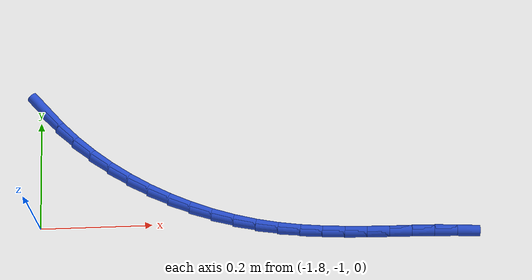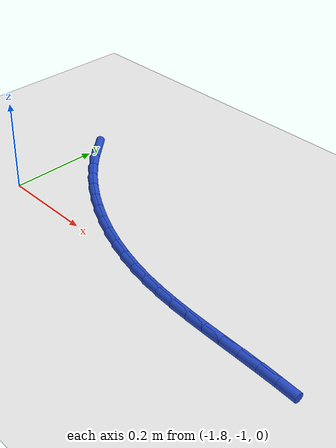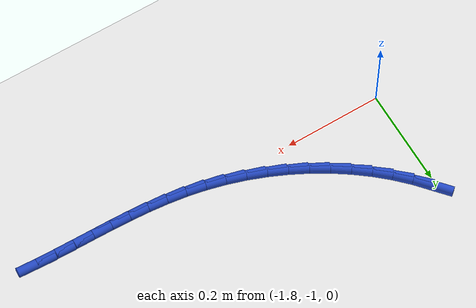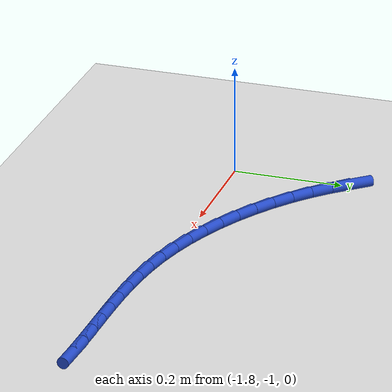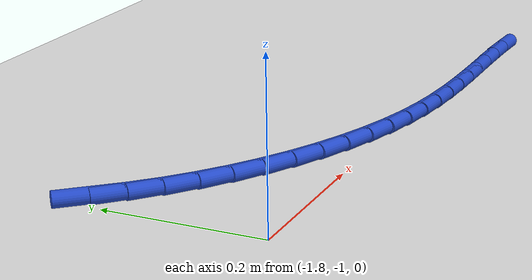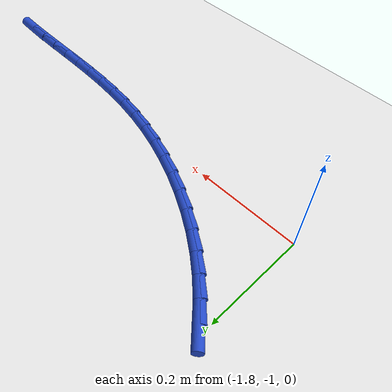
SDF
<sdf version="1.6">
 <world name="default">
  <model name="ground_plane">
   <static>1</static>
   <link name="link">
    <collision name="collision">
     <geometry><plane><normal>0 0 1</normal><size>100 100</size></plane></geometry>
     <surface><friction><ode><mu>100</mu><mu2>50</mu2></ode></friction></surface>
    </collision>
    <visual name="visual">
     <cast_shadows>0</cast_shadows>
     <geometry><plane><normal>0 0 1</normal><size>100 100</size></plane></geometry>
     <material>
      <script><uri>file://media/materials/scripts/gazebo.material</uri><name>Gazebo/WhiteGlow</name></script>
     </material>
    </visual>
   </link>
  </model>
  <model name="line">
   <link name="link_108">
    <pose>-1.7912358187126936 -0.7799127115967691 0.01 0 1.57 -0.8622204265804458</pose>
    <collision name="collision">
     <geometry><cylinder><radius>0.01</radius><length>0.08</length></cylinder></geometry>
    </collision>
    <visual name="visual">
     <material>
      <script><name>Gazebo/Blue</name><uri>file://media/materials/scripts/gazebo.material</uri></script>
     </material>
     <geometry><cylinder><radius>0.01</radius><length>0.08</length></cylinder></geometry>
    </visual>
   </link>
   <link name="link_109">
    <pose>-1.765108441517183 -0.8103977592660492 0.01 0 1.57 -0.793019555378858</pose>
    <collision name="collision">
     <geometry><cylinder><radius>0.01</radius><length>0.08</length></cylinder></geometry>
    </collision>
    <visual name="visual">
     <material>
      <script><name>Gazebo/Blue</name><uri>file://media/materials/scripts/gazebo.material</uri></script>
     </material>
     <geometry><cylinder><radius>0.01</radius><length>0.08</length></cylinder></geometry>
    </visual>
   </link>
   <link name="link_110">
    <pose>-1.7367904774284568 -0.8391506914478122 0.01 0 1.57 -0.7248459104672693</pose>
    <collision name="collision">
     <geometry><cylinder><radius>0.01</radius><length>0.08</length></cylinder></geometry>
    </collision>
    <visual name="visual">
     <material>
      <script><name>Gazebo/Blue</name><uri>file://media/materials/scripts/gazebo.material</uri></script>
     </material>
     <geometry><cylinder><radius>0.01</radius><length>0.08</length></cylinder></geometry>
    </visual>
   </link>
   <link name="link_111">
    <pose>-1.7064028698980664 -0.8660643323955335 0.01 0 1.57 -0.6598375135440552</pose>
    <collision name="collision">
     <geometry><cylinder><radius>0.01</radius><length>0.08</length></cylinder></geometry>
    </collision>
    <visual name="visual">
     <material>
      <script><name>Gazebo/Blue</name><uri>file://media/materials/scripts/gazebo.material</uri></script>
     </material>
     <geometry><cylinder><radius>0.01</radius><length>0.08</length></cylinder></geometry>
    </visual>
   </link>
   <link name="link_112">
    <pose>-1.674163656669805 -0.8910769514778608 0.01 0 1.57 -0.5975071621251413</pose>
    <collision name="collision">
     <geometry><cylinder><radius>0.01</radius><length>0.08</length></cylinder></geometry>
    </collision>
    <visual name="visual">
     <material>
      <script><name>Gazebo/Blue</name><uri>file://media/materials/scripts/gazebo.material</uri></script>
     </material>
     <geometry><cylinder><radius>0.01</radius><length>0.08</length></cylinder></geometry>
    </visual>
   </link>
   <link name="link_113">
    <pose>-1.6402908754874654 -0.9141268180634404 0.01 0 1.57 -0.5373382476856642</pose>
    <collision name="collision">
     <geometry><cylinder><radius>0.01</radius><length>0.08</length></cylinder></geometry>
    </collision>
    <visual name="visual">
     <material>
      <script><name>Gazebo/Blue</name><uri>file://media/materials/scripts/gazebo.material</uri></script>
     </material>
     <geometry><cylinder><radius>0.01</radius><length>0.08</length></cylinder></geometry>
    </visual>
   </link>
   <link name="link_114">
    <pose>-1.6050025640948429 -0.93515220152092 0.01 0 1.57 -0.4787973992429314</pose>
    <collision name="collision">
     <geometry><cylinder><radius>0.01</radius><length>0.08</length></cylinder></geometry>
    </collision>
    <visual name="visual">
     <material>
      <script><name>Gazebo/Blue</name><uri>file://media/materials/scripts/gazebo.material</uri></script>
     </material>
     <geometry><cylinder><radius>0.01</radius><length>0.08</length></cylinder></geometry>
    </visual>
   </link>
   <link name="link_115">
    <pose>-1.5685167602357293 -0.9540913712189466 0.01 0 1.57 -0.42134039837001847</pose>
    <collision name="collision">
     <geometry><cylinder><radius>0.01</radius><length>0.08</length></cylinder></geometry>
    </collision>
    <visual name="visual">
     <material>
      <script><name>Gazebo/Blue</name><uri>file://media/materials/scripts/gazebo.material</uri></script>
     </material>
     <geometry><cylinder><radius>0.01</radius><length>0.08</length></cylinder></geometry>
    </visual>
   </link>
   <link name="link_116">
    <pose>-1.53105150165392 -0.9708825965261663 0.01 0 1.57 -0.36441309400160177</pose>
    <collision name="collision">
     <geometry><cylinder><radius>0.01</radius><length>0.08</length></cylinder></geometry>
    </collision>
    <visual name="visual">
     <material>
      <script><name>Gazebo/Blue</name><uri>file://media/materials/scripts/gazebo.material</uri></script>
     </material>
     <geometry><cylinder><radius>0.01</radius><length>0.08</length></cylinder></geometry>
    </visual>
   </link>
   <link name="link_117">
    <pose>-1.4928248260932078 -0.9854641468112263 0.01 0 1.57 -0.3074488046332142</pose>
    <collision name="collision">
     <geometry><cylinder><radius>0.01</radius><length>0.08</length></cylinder></geometry>
    </collision>
    <visual name="visual">
     <material>
      <script><name>Gazebo/Blue</name><uri>file://media/materials/scripts/gazebo.material</uri></script>
     </material>
     <geometry><cylinder><radius>0.01</radius><length>0.08</length></cylinder></geometry>
    </visual>
   </link>
   <link name="link_118">
    <pose>-1.4540547712973877 -0.9977742914427742 0.01 0 1.57 -0.24986347622223026</pose>
    <collision name="collision">
     <geometry><cylinder><radius>0.01</radius><length>0.08</length></cylinder></geometry>
    </collision>
    <visual name="visual">
     <material>
      <script><name>Gazebo/Blue</name><uri>file://media/materials/scripts/gazebo.material</uri></script>
     </material>
     <geometry><cylinder><radius>0.01</radius><length>0.08</length></cylinder></geometry>
    </visual>
   </link>
   <link name="link_119">
    <pose>-1.414959375010253 -1.0077512997894567 0.01 0 1.57 -0.19169475672861824</pose>
    <collision name="collision">
     <geometry><cylinder><radius>0.01</radius><length>0.08</length></cylinder></geometry>
    </collision>
    <visual name="visual">
     <material>
      <script><name>Gazebo/Blue</name><uri>file://media/materials/scripts/gazebo.material</uri></script>
     </material>
     <geometry><cylinder><radius>0.01</radius><length>0.08</length></cylinder></geometry>
    </visual>
   </link>
   <link name="link_120">
    <pose>-1.3757399857437154 -1.01536291464635 0.01 0 1.57 -0.1386567992293267</pose>
    <collision name="collision">
     <geometry><cylinder><radius>0.01</radius><length>0.08</length></cylinder></geometry>
    </collision>
    <visual name="visual">
     <material>
      <script><name>Gazebo/Blue</name><uri>file://media/materials/scripts/gazebo.material</uri></script>
     </material>
     <geometry><cylinder><radius>0.01</radius><length>0.08</length></cylinder></geometry>
    </visual>
   </link>
   <link name="link_121">
    <pose>-1.3364452304762546 -1.0208465872595862 0.01 0 1.57 -0.09457794349253376</pose>
    <collision name="collision">
     <geometry><cylinder><radius>0.01</radius><length>0.08</length></cylinder></geometry>
    </collision>
    <visual name="visual">
     <material>
      <script><name>Gazebo/Blue</name><uri>file://media/materials/scripts/gazebo.material</uri></script>
     </material>
     <geometry><cylinder><radius>0.01</radius><length>0.08</length></cylinder></geometry>
    </visual>
   </link>
   <link name="link_122">
    <pose>-1.2970418209689685 -1.0245844323415487 0.01 0 1.57 -0.05999729185227151</pose>
    <collision name="collision">
     <geometry><cylinder><radius>0.01</radius><length>0.08</length></cylinder></geometry>
    </collision>
    <visual name="visual">
     <material>
      <script><name>Gazebo/Blue</name><uri>file://media/materials/scripts/gazebo.material</uri></script>
     </material>
     <geometry><cylinder><radius>0.01</radius><length>0.08</length></cylinder></geometry>
    </visual>
   </link>
   <link name="link_123">
    <pose>-1.2574956877466075 -1.0269599442793798 0.01 0 1.57 -0.03514590153951568</pose>
    <collision name="collision">
     <geometry><cylinder><radius>0.01</radius><length>0.08</length></cylinder></geometry>
    </collision>
    <visual name="visual">
     <material>
      <script><name>Gazebo/Blue</name><uri>file://media/materials/scripts/gazebo.material</uri></script>
     </material>
     <geometry><cylinder><radius>0.01</radius><length>0.08</length></cylinder></geometry>
    </visual>
   </link>
   <link name="link_124">
    <pose>-1.217772761333924 -1.0283566174602208 0.01 0 1.57 -0.020063743026114515</pose>
    <collision name="collision">
     <geometry><cylinder><radius>0.01</radius><length>0.08</length></cylinder></geometry>
    </collision>
    <visual name="visual">
     <material>
      <script><name>Gazebo/Blue</name><uri>file://media/materials/scripts/gazebo.material</uri></script>
     </material>
     <geometry><cylinder><radius>0.01</radius><length>0.08</length></cylinder></geometry>
    </visual>
   </link>
   <link name="link_125">
    <pose>-1.1778389722556686 -1.0291579462712135 0.01 0 1.57 -0.014670365821905767</pose>
    <collision name="collision">
     <geometry><cylinder><radius>0.01</radius><length>0.08</length></cylinder></geometry>
    </collision>
    <visual name="visual">
     <material>
      <script><name>Gazebo/Blue</name><uri>file://media/materials/scripts/gazebo.material</uri></script>
     </material>
     <geometry><cylinder><radius>0.01</radius><length>0.08</length></cylinder></geometry>
    </visual>
   </link>
   <link name="link_126">
    <pose>-1.1376602510365927 -1.0297474250994996 0.01 0 1.57 -0.018810585613793403</pose>
    <collision name="collision">
     <geometry><cylinder><radius>0.01</radius><length>0.08</length></cylinder></geometry>
    </collision>
    <visual name="visual">
     <material>
      <script><name>Gazebo/Blue</name><uri>file://media/materials/scripts/gazebo.material</uri></script>
     </material>
     <geometry><cylinder><radius>0.01</radius><length>0.08</length></cylinder></geometry>
    </visual>
   </link>
   <link name="link_127">
    <pose>-1.0972025282014495 -1.030508548332221 0.01 0 1.57 -0.03227322494262466</pose>
    <collision name="collision">
     <geometry><cylinder><radius>0.01</radius><length>0.08</length></cylinder></geometry>
    </collision>
    <visual name="visual">
     <material>
      <script><name>Gazebo/Blue</name><uri>file://media/materials/scripts/gazebo.material</uri></script>
     </material>
     <geometry><cylinder><radius>0.01</radius><length>0.08</length></cylinder></geometry>
    </visual>
   </link>
   <link name="link_128">
    <pose>-1.0564317342749892 -1.0318248103565189 0.01 0 1.57 -0.05478482441006677</pose>
    <collision name="collision">
     <geometry><cylinder><radius>0.01</radius><length>0.08</length></cylinder></geometry>
    </collision>
    <visual name="visual">
     <material>
      <script><name>Gazebo/Blue</name><uri>file://media/materials/scripts/gazebo.material</uri></script>
     </material>
     <geometry><cylinder><radius>0.01</radius><length>0.08</length></cylinder></geometry>
    </visual>
   </link>
  </model>
 </world>
</sdf>
